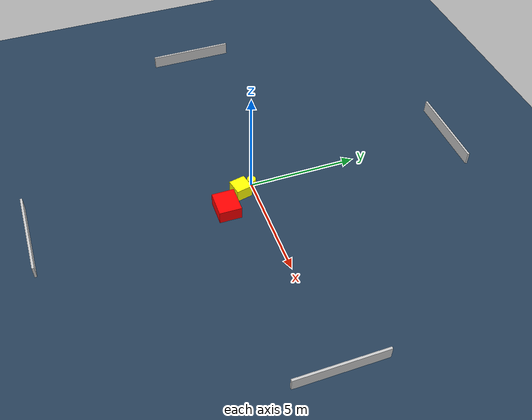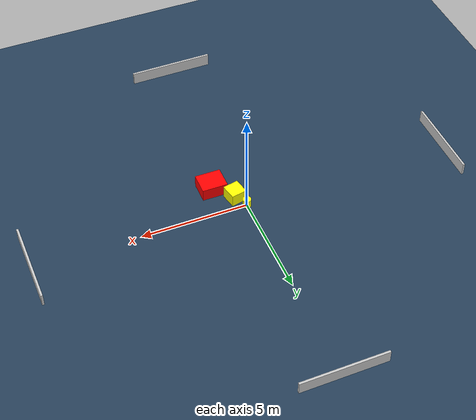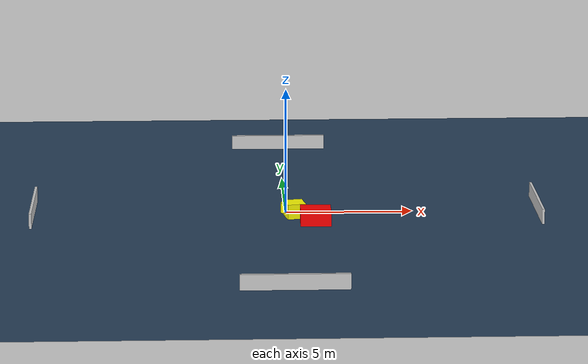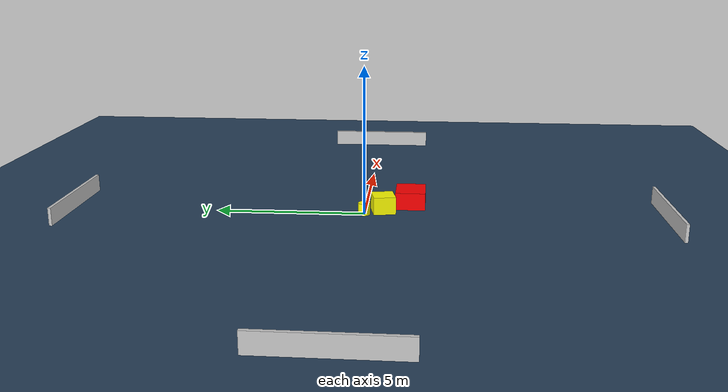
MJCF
<?xml version="1.0" ?>
<mujoco model="generated_environment">
  <option timestep="0.01" integrator="RK4" cone="elliptic"/>
  <default>
    <geom density="1"/>
  </default>
  <asset>
    <texture builtin="gradient" height="3072" name="skybox" rgb1="0.3 0.5 0.7" rgb2="0 0 0" type="skybox" width="512"/>
    <texture builtin="checker" height="300" name="groundplane" rgb1="0.2 0.3 0.4" rgb2="0.1 0.2 0.3" type="2d" width="300"/>
    <material name="groundplane" reflectance="0.2" texrepeat="5 5" texture="groundplane"/>
  </asset>
  <worldbody>
    <light dir="0 0 -1" directional="true" pos="0 0 1.5"/>
    <geom condim="3" friction="0.5 0.005 0.001" material="groundplane" name="floor" pos="0 0 0" size="0 0 0.05" type="plane"/>
    <body name="walls">
      <geom name="wall_1" condim="4" pos="-10.0 0.0 0.3" rgba="0.800000011920929 0.800000011920929 0.800000011920929 1.0" size="0.05 2.0 0.3" type="box"/>
      <geom name="wall_2" condim="4" pos="10.0 0.0 0.3" rgba="0.800000011920929 0.800000011920929 0.800000011920929 1.0" size="0.05 2.0 0.3" type="box"/>
      <geom name="wall_3" condim="4" pos="0.0 -10.0 0.3" rgba="0.800000011920929 0.800000011920929 0.800000011920929 1.0" size="2.0 0.05 0.3" type="box"/>
      <geom name="wall_4" condim="4" pos="0.0 10.0 0.3" rgba="0.800000011920929 0.800000011920929 0.800000011920929 1.0" size="2.0 0.05 0.3" type="box"/>
    </body>
    <body name="robot">
      <joint name="joint_x" type="slide" pos="0 0 0" axis="1 0 0"/>
      <joint name="joint_y" type="slide" pos="0 0 0" axis="0 1 0"/>
      <geom name="robot" type="cylinder" pos="0.0 0.0 0.2" size="0.2 0.2 0.0" mass="5.0" friction="1.0 0.005 0.0001" condim="4" rgba="1.0 1.0 0.0 1.0"/>
    </body>
    <body name="obstacle_1_movable">
      <geom name="obstacle_1_movable" condim="4" pos="0.32865668827969174 -0.6237342486186679 0.3" euler="0 0 11.764542989157887" friction="0.0 0.005 0.001" rgba="1.0 1.0 0.0 1.0" size="0.3694664026576995 0.374857285265769 0.3" type="box" mass="0.1"/>
      <joint type="free"/>
    </body>
    <body name="obstacle_2_static">
      <geom name="obstacle_2_static" condim="4" pos="1.1128102749754947 -1.5352022534469552 0.3" euler="0 0 269.5962614883931" friction="0.0 0.005 0.001" rgba="1.0 0.0 0.0 1.0" size="0.5094755086893481 0.597505261651001 0.3" type="box"/>
    </body>
  </worldbody>
  <actuator>
    <motor name="actuator_x" joint="joint_x" gear="1" ctrlrange="-1 1"/>
    <motor name="actuator_y" joint="joint_y" gear="1" ctrlrange="-1 1"/>
  </actuator>
</mujoco>
